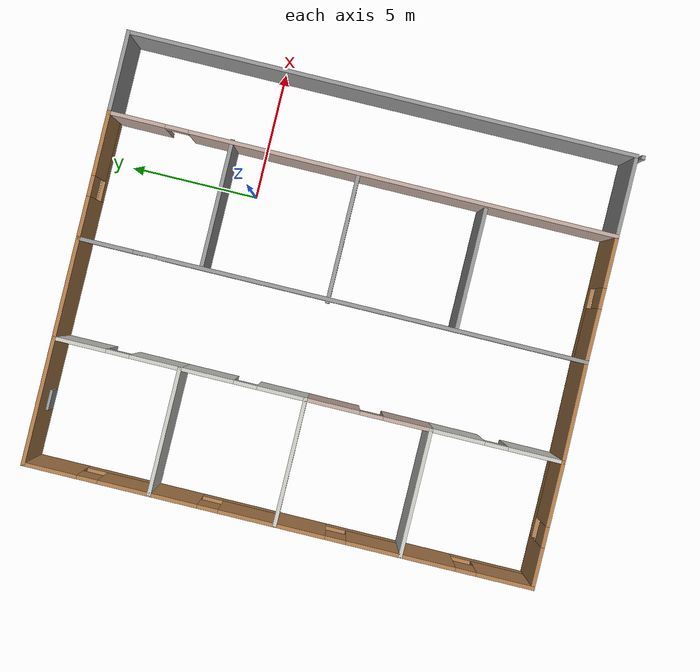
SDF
<?xml version='1.0'?>
<sdf version='1.7'>
  <model name='hospital_model_floor'>
    <pose>-3.60039 -4.00127 0 0 -0 0</pose>
    <link name='Wall_23'>
      <pose>-8.325 7.5 0 0 -0 -1.5708</pose>
      <visual name='Wall_23_Visual_0'>
        <pose>-1.43552 0 1.25 0 -0 0</pose>
        <geometry>
          <box>
            <size>2.12897 0.15 2.5</size>
          </box>
        </geometry>
        <material>
          <script>
            <uri>file://media/materials/scripts/gazebo.material</uri>
            <name>Gazebo/Wood</name>
          </script>
          <ambient>1 1 1 1</ambient>
        </material>
        <meta>
          <layer>0</layer>
        </meta>
      </visual>
      <collision name='Wall_23_Collision_0'>
        <geometry>
          <box>
            <size>2.12897 0.15 2.5</size>
          </box>
        </geometry>
        <pose>-1.43552 0 1.25 0 -0 0</pose>
      </collision>
      <visual name='Wall_23_Visual_1'>
        <pose>1.06448 0 0.25 0 -0 0</pose>
        <geometry>
          <box>
            <size>2.87103 0.15 0.5</size>
          </box>
        </geometry>
        <material>
          <script>
            <uri>file://media/materials/scripts/gazebo.material</uri>
            <name>Gazebo/Wood</name>
          </script>
          <ambient>1 1 1 1</ambient>
        </material>
        <meta>
          <layer>0</layer>
        </meta>
      </visual>
      <collision name='Wall_23_Collision_1'>
        <geometry>
          <box>
            <size>2.87103 0.15 0.5</size>
          </box>
        </geometry>
        <pose>1.06448 0 0.25 0 -0 0</pose>
      </collision>
      <visual name='Wall_23_Visual_2'>
        <pose>1.46448 0 1.5 0 -0 0</pose>
        <geometry>
          <box>
            <size>2.07103 0.15 2</size>
          </box>
        </geometry>
        <material>
          <script>
            <uri>file://media/materials/scripts/gazebo.material</uri>
            <name>Gazebo/Wood</name>
          </script>
          <ambient>1 1 1 1</ambient>
        </material>
        <meta>
          <layer>0</layer>
        </meta>
      </visual>
      <collision name='Wall_23_Collision_2'>
        <geometry>
          <box>
            <size>2.07103 0.15 2</size>
          </box>
        </geometry>
        <pose>1.46448 0 1.5 0 -0 0</pose>
      </collision>
      <visual name='Wall_23_Visual_3'>
        <pose>0.028966 0 1.9 0 -0 0</pose>
        <geometry>
          <box>
            <size>0.8 0.15 1.2</size>
          </box>
        </geometry>
        <material>
          <script>
            <uri>file://media/materials/scripts/gazebo.material</uri>
            <name>Gazebo/Wood</name>
          </script>
          <ambient>1 1 1 1</ambient>
        </material>
        <meta>
          <layer>0</layer>
        </meta>
      </visual>
      <collision name='Wall_23_Collision_3'>
        <geometry>
          <box>
            <size>0.8 0.15 1.2</size>
          </box>
        </geometry>
        <pose>0.028966 0 1.9 0 -0 0</pose>
      </collision>
    </link>
    <link name='Wall_24'>
      <collision name='Wall_24_Collision'>
        <geometry>
          <box>
            <size>5 0.15 2.5</size>
          </box>
        </geometry>
        <pose>0 0 1.25 0 -0 0</pose>
      </collision>
      <visual name='Wall_24_Visual'>
        <pose>0 0 1.25 0 -0 0</pose>
        <geometry>
          <box>
            <size>5 0.15 2.5</size>
          </box>
        </geometry>
        <material>
          <script>
            <uri>file://media/materials/scripts/gazebo.material</uri>
            <name>Gazebo/CeilingTiled</name>
          </script>
          <ambient>1 1 1 1</ambient>
        </material>
        <meta>
          <layer>0</layer>
        </meta>
      </visual>
      <pose>-5.9 5.075 0 0 -0 0</pose>
    </link>
    <link name='Wall_25'>
      <pose>-3.475 7.5 0 0 -0 1.5708</pose>
      <visual name='Wall_25_Visual_0'>
        <pose>-1.48948 0 1.25 0 -0 0</pose>
        <geometry>
          <box>
            <size>2.02103 0.15 2.5</size>
          </box>
        </geometry>
        <material>
          <script>
            <uri>file://media/materials/scripts/gazebo.material</uri>
            <name>Gazebo/CeilingTiled</name>
          </script>
          <ambient>1 1 1 1</ambient>
        </material>
        <meta>
          <layer>0</layer>
        </meta>
      </visual>
      <collision name='Wall_25_Collision_0'>
        <geometry>
          <box>
            <size>2.02103 0.15 2.5</size>
          </box>
        </geometry>
        <pose>-1.48948 0 1.25 0 -0 0</pose>
      </collision>
      <visual name='Wall_25_Visual_1'>
        <pose>1.46052 0 1.25 0 -0 0</pose>
        <geometry>
          <box>
            <size>2.07897 0.15 2.5</size>
          </box>
        </geometry>
        <material>
          <script>
            <uri>file://media/materials/scripts/gazebo.material</uri>
            <name>Gazebo/CeilingTiled</name>
          </script>
          <ambient>1 1 1 1</ambient>
        </material>
        <meta>
          <layer>0</layer>
        </meta>
      </visual>
      <collision name='Wall_25_Collision_1'>
        <geometry>
          <box>
            <size>2.07897 0.15 2.5</size>
          </box>
        </geometry>
        <pose>1.46052 0 1.25 0 -0 0</pose>
      </collision>
      <visual name='Wall_25_Visual_2'>
        <pose>-0.028966 0 2.25 0 -0 0</pose>
        <geometry>
          <box>
            <size>0.9 0.15 0.5</size>
          </box>
        </geometry>
        <material>
          <script>
            <uri>file://media/materials/scripts/gazebo.material</uri>
            <name>Gazebo/CeilingTiled</name>
          </script>
          <ambient>1 1 1 1</ambient>
        </material>
        <meta>
          <layer>0</layer>
        </meta>
      </visual>
      <collision name='Wall_25_Collision_2'>
        <geometry>
          <box>
            <size>0.9 0.15 0.5</size>
          </box>
        </geometry>
        <pose>-0.028966 0 2.25 0 -0 0</pose>
      </collision>
    </link>
    <link name='Wall_26'>
      <collision name='Wall_26_Collision'>
        <geometry>
          <box>
            <size>5 0.15 2.5</size>
          </box>
        </geometry>
        <pose>0 0 1.25 0 -0 0</pose>
      </collision>
      <visual name='Wall_26_Visual'>
        <pose>0 0 1.25 0 -0 0</pose>
        <geometry>
          <box>
            <size>5 0.15 2.5</size>
          </box>
        </geometry>
        <material>
          <script>
            <uri>file://media/materials/scripts/gazebo.material</uri>
            <name>Gazebo/Wood</name>
          </script>
          <ambient>1 1 1 1</ambient>
        </material>
        <meta>
          <layer>0</layer>
        </meta>
      </visual>
      <pose>-5.9 9.925 0 0 -0 3.14159</pose>
    </link>
    <link name='Wall_28'>
      <pose>-8.325 2.65 0 0 -0 -1.5708</pose>
      <visual name='Wall_28_Visual_0'>
        <pose>-1.53457 0 1.25 0 -0 0</pose>
        <geometry>
          <box>
            <size>1.93086 0.15 2.5</size>
          </box>
        </geometry>
        <material>
          <script>
            <uri>file://media/materials/scripts/gazebo.material</uri>
            <name>Gazebo/Wood</name>
          </script>
          <ambient>1 1 1 1</ambient>
        </material>
        <meta>
          <layer>0</layer>
        </meta>
      </visual>
      <collision name='Wall_28_Collision_0'>
        <geometry>
          <box>
            <size>1.93086 0.15 2.5</size>
          </box>
        </geometry>
        <pose>-1.53457 0 1.25 0 -0 0</pose>
      </collision>
      <visual name='Wall_28_Visual_1'>
        <pose>0.96543 0 0.25 0 -0 0</pose>
        <geometry>
          <box>
            <size>3.06914 0.15 0.5</size>
          </box>
        </geometry>
        <material>
          <script>
            <uri>file://media/materials/scripts/gazebo.material</uri>
            <name>Gazebo/Wood</name>
          </script>
          <ambient>1 1 1 1</ambient>
        </material>
        <meta>
          <layer>0</layer>
        </meta>
      </visual>
      <collision name='Wall_28_Collision_1'>
        <geometry>
          <box>
            <size>3.06914 0.15 0.5</size>
          </box>
        </geometry>
        <pose>0.96543 0 0.25 0 -0 0</pose>
      </collision>
      <visual name='Wall_28_Visual_2'>
        <pose>1.36543 0 1.5 0 -0 0</pose>
        <geometry>
          <box>
            <size>2.26914 0.15 2</size>
          </box>
        </geometry>
        <material>
          <script>
            <uri>file://media/materials/scripts/gazebo.material</uri>
            <name>Gazebo/Wood</name>
          </script>
          <ambient>1 1 1 1</ambient>
        </material>
        <meta>
          <layer>0</layer>
        </meta>
      </visual>
      <collision name='Wall_28_Collision_2'>
        <geometry>
          <box>
            <size>2.26914 0.15 2</size>
          </box>
        </geometry>
        <pose>1.36543 0 1.5 0 -0 0</pose>
      </collision>
      <visual name='Wall_28_Visual_3'>
        <pose>-0.16914 0 1.9 0 -0 0</pose>
        <geometry>
          <box>
            <size>0.8 0.15 1.2</size>
          </box>
        </geometry>
        <material>
          <script>
            <uri>file://media/materials/scripts/gazebo.material</uri>
            <name>Gazebo/Wood</name>
          </script>
          <ambient>1 1 1 1</ambient>
        </material>
        <meta>
          <layer>0</layer>
        </meta>
      </visual>
      <collision name='Wall_28_Collision_3'>
        <geometry>
          <box>
            <size>0.8 0.15 1.2</size>
          </box>
        </geometry>
        <pose>-0.16914 0 1.9 0 -0 0</pose>
      </collision>
    </link>
    <link name='Wall_29'>
      <collision name='Wall_29_Collision'>
        <geometry>
          <box>
            <size>5 0.15 2.5</size>
          </box>
        </geometry>
        <pose>0 0 1.25 0 -0 0</pose>
      </collision>
      <visual name='Wall_29_Visual'>
        <pose>0 0 1.25 0 -0 0</pose>
        <geometry>
          <box>
            <size>5 0.15 2.5</size>
          </box>
        </geometry>
        <material>
          <script>
            <uri>file://media/materials/scripts/gazebo.material</uri>
            <name>Gazebo/CeilingTiled</name>
          </script>
          <ambient>1 1 1 1</ambient>
        </material>
        <meta>
          <layer>0</layer>
        </meta>
      </visual>
      <pose>-5.9 0.224999 0 0 -0 0</pose>
    </link>
    <link name='Wall_30'>
      <pose>-3.475 2.65 0 0 -0 1.5708</pose>
      <visual name='Wall_30_Visual_0'>
        <pose>-1.52725 0 1.25 0 -0 0</pose>
        <geometry>
          <box>
            <size>1.9455 0.15 2.5</size>
          </box>
        </geometry>
        <material>
          <script>
            <uri>file://media/materials/scripts/gazebo.material</uri>
            <name>Gazebo/CeilingTiled</name>
          </script>
          <ambient>1 1 1 1</ambient>
        </material>
        <meta>
          <layer>0</layer>
        </meta>
      </visual>
      <collision name='Wall_30_Collision_0'>
        <geometry>
          <box>
            <size>1.9455 0.15 2.5</size>
          </box>
        </geometry>
        <pose>-1.52725 0 1.25 0 -0 0</pose>
      </collision>
      <visual name='Wall_30_Visual_1'>
        <pose>1.42275 0 1.25 0 -0 0</pose>
        <geometry>
          <box>
            <size>2.1545 0.15 2.5</size>
          </box>
        </geometry>
        <material>
          <script>
            <uri>file://media/materials/scripts/gazebo.material</uri>
            <name>Gazebo/CeilingTiled</name>
          </script>
          <ambient>1 1 1 1</ambient>
        </material>
        <meta>
          <layer>0</layer>
        </meta>
      </visual>
      <collision name='Wall_30_Collision_1'>
        <geometry>
          <box>
            <size>2.1545 0.15 2.5</size>
          </box>
        </geometry>
        <pose>1.42275 0 1.25 0 -0 0</pose>
      </collision>
      <visual name='Wall_30_Visual_2'>
        <pose>-0.104501 0 2.25 0 -0 0</pose>
        <geometry>
          <box>
            <size>0.9 0.15 0.5</size>
          </box>
        </geometry>
        <material>
          <script>
            <uri>file://media/materials/scripts/gazebo.material</uri>
            <name>Gazebo/CeilingTiled</name>
          </script>
          <ambient>1 1 1 1</ambient>
        </material>
        <meta>
          <layer>0</layer>
        </meta>
      </visual>
      <collision name='Wall_30_Collision_2'>
        <geometry>
          <box>
            <size>0.9 0.15 0.5</size>
          </box>
        </geometry>
        <pose>-0.104501 0 2.25 0 -0 0</pose>
      </collision>
    </link>
    <link name='Wall_32'>
      <pose>-8.325 -2.2 0 0 -0 -1.5708</pose>
      <visual name='Wall_32_Visual_0'>
        <pose>-1.4968 0 1.25 0 -0 0</pose>
        <geometry>
          <box>
            <size>2.00639 0.15 2.5</size>
          </box>
        </geometry>
        <material>
          <script>
            <uri>file://media/materials/scripts/gazebo.material</uri>
            <name>Gazebo/Wood</name>
          </script>
          <ambient>1 1 1 1</ambient>
        </material>
        <meta>
          <layer>0</layer>
        </meta>
      </visual>
      <collision name='Wall_32_Collision_0'>
        <geometry>
          <box>
            <size>2.00639 0.15 2.5</size>
          </box>
        </geometry>
        <pose>-1.4968 0 1.25 0 -0 0</pose>
      </collision>
      <visual name='Wall_32_Visual_1'>
        <pose>1.0032 0 0.25 0 -0 0</pose>
        <geometry>
          <box>
            <size>2.99361 0.15 0.5</size>
          </box>
        </geometry>
        <material>
          <script>
            <uri>file://media/materials/scripts/gazebo.material</uri>
            <name>Gazebo/Wood</name>
          </script>
          <ambient>1 1 1 1</ambient>
        </material>
        <meta>
          <layer>0</layer>
        </meta>
      </visual>
      <collision name='Wall_32_Collision_1'>
        <geometry>
          <box>
            <size>2.99361 0.15 0.5</size>
          </box>
        </geometry>
        <pose>1.0032 0 0.25 0 -0 0</pose>
      </collision>
      <visual name='Wall_32_Visual_2'>
        <pose>1.4032 0 1.5 0 -0 0</pose>
        <geometry>
          <box>
            <size>2.1936 0.15 2</size>
          </box>
        </geometry>
        <material>
          <script>
            <uri>file://media/materials/scripts/gazebo.material</uri>
            <name>Gazebo/Wood</name>
          </script>
          <ambient>1 1 1 1</ambient>
        </material>
        <meta>
          <layer>0</layer>
        </meta>
      </visual>
      <collision name='Wall_32_Collision_2'>
        <geometry>
          <box>
            <size>2.1936 0.15 2</size>
          </box>
        </geometry>
        <pose>1.4032 0 1.5 0 -0 0</pose>
      </collision>
      <visual name='Wall_32_Visual_3'>
        <pose>-0.093605 0 1.9 0 -0 0</pose>
        <geometry>
          <box>
            <size>0.8 0.15 1.2</size>
          </box>
        </geometry>
        <material>
          <script>
            <uri>file://media/materials/scripts/gazebo.material</uri>
            <name>Gazebo/Wood</name>
          </script>
          <ambient>1 1 1 1</ambient>
        </material>
        <meta>
          <layer>0</layer>
        </meta>
      </visual>
      <collision name='Wall_32_Collision_3'>
        <geometry>
          <box>
            <size>0.8 0.15 1.2</size>
          </box>
        </geometry>
        <pose>-0.093605 0 1.9 0 -0 0</pose>
      </collision>
    </link>
    <link name='Wall_33'>
      <collision name='Wall_33_Collision'>
        <geometry>
          <box>
            <size>5 0.15 2.5</size>
          </box>
        </geometry>
        <pose>0 0 1.25 0 -0 0</pose>
      </collision>
      <visual name='Wall_33_Visual'>
        <pose>0 0 1.25 0 -0 0</pose>
        <geometry>
          <box>
            <size>5 0.15 2.5</size>
          </box>
        </geometry>
        <material>
          <script>
            <uri>file://media/materials/scripts/gazebo.material</uri>
            <name>Gazebo/CeilingTiled</name>
          </script>
          <ambient>1 1 1 1</ambient>
        </material>
        <meta>
          <layer>0</layer>
        </meta>
      </visual>
      <pose>-5.9 -4.625 0 0 -0 0</pose>
    </link>
    <link name='Wall_34'>
      <pose>-3.475 -2.2 0 0 -0 1.5708</pose>
      <visual name='Wall_34_Visual_0'>
        <pose>-1.53765 0 1.25 0 -0 0</pose>
        <geometry>
          <box>
            <size>1.92469 0.15 2.5</size>
          </box>
        </geometry>
        <material>
          <script>
            <uri>file://media/materials/scripts/gazebo.material</uri>
            <name>Gazebo/Grey</name>
          </script>
          <ambient>0.760784 0.662745 0.627451 1</ambient>
        </material>
        <meta>
          <layer>0</layer>
        </meta>
      </visual>
      <collision name='Wall_34_Collision_0'>
        <geometry>
          <box>
            <size>1.92469 0.15 2.5</size>
          </box>
        </geometry>
        <pose>-1.53765 0 1.25 0 -0 0</pose>
      </collision>
      <visual name='Wall_34_Visual_1'>
        <pose>1.41235 0 1.25 0 -0 0</pose>
        <geometry>
          <box>
            <size>2.17531 0.15 2.5</size>
          </box>
        </geometry>
        <material>
          <script>
            <uri>file://media/materials/scripts/gazebo.material</uri>
            <name>Gazebo/Grey</name>
          </script>
          <ambient>0.760784 0.662745 0.627451 1</ambient>
        </material>
        <meta>
          <layer>0</layer>
        </meta>
      </visual>
      <collision name='Wall_34_Collision_1'>
        <geometry>
          <box>
            <size>2.17531 0.15 2.5</size>
          </box>
        </geometry>
        <pose>1.41235 0 1.25 0 -0 0</pose>
      </collision>
      <visual name='Wall_34_Visual_2'>
        <pose>-0.125308 0 2.25 0 -0 0</pose>
        <geometry>
          <box>
            <size>0.9 0.15 0.5</size>
          </box>
        </geometry>
        <material>
          <script>
            <uri>file://media/materials/scripts/gazebo.material</uri>
            <name>Gazebo/Grey</name>
          </script>
          <ambient>0.760784 0.662745 0.627451 1</ambient>
        </material>
        <meta>
          <layer>0</layer>
        </meta>
      </visual>
      <collision name='Wall_34_Collision_2'>
        <geometry>
          <box>
            <size>0.9 0.15 0.5</size>
          </box>
        </geometry>
        <pose>-0.125308 0 2.25 0 -0 0</pose>
      </collision>
    </link>
    <link name='Wall_37'>
      <pose>-8.325 -7.175 0 0 -0 -1.5708</pose>
      <visual name='Wall_37_Visual_0'>
        <pose>-1.52931 0 1.25 0 -0 0</pose>
        <geometry>
          <box>
            <size>2.19139 0.15 2.5</size>
          </box>
        </geometry>
        <material>
          <script>
            <uri>file://media/materials/scripts/gazebo.material</uri>
            <name>Gazebo/Wood</name>
          </script>
          <ambient>1 1 1 1</ambient>
        </material>
        <meta>
          <layer>0</layer>
        </meta>
      </visual>
      <collision name='Wall_37_Collision_0'>
        <geometry>
          <box>
            <size>2.19139 0.15 2.5</size>
          </box>
        </geometry>
        <pose>-1.52931 0 1.25 0 -0 0</pose>
      </collision>
      <visual name='Wall_37_Visual_1'>
        <pose>1.09569 0 0.25 0 -0 0</pose>
        <geometry>
          <box>
            <size>3.05861 0.15 0.5</size>
          </box>
        </geometry>
        <material>
          <script>
            <uri>file://media/materials/scripts/gazebo.material</uri>
            <name>Gazebo/Wood</name>
          </script>
          <ambient>1 1 1 1</ambient>
        </material>
        <meta>
          <layer>0</layer>
        </meta>
      </visual>
      <collision name='Wall_37_Collision_1'>
        <geometry>
          <box>
            <size>3.05861 0.15 0.5</size>
          </box>
        </geometry>
        <pose>1.09569 0 0.25 0 -0 0</pose>
      </collision>
      <visual name='Wall_37_Visual_2'>
        <pose>1.49569 0 1.5 0 -0 0</pose>
        <geometry>
          <box>
            <size>2.25861 0.15 2</size>
          </box>
        </geometry>
        <material>
          <script>
            <uri>file://media/materials/scripts/gazebo.material</uri>
            <name>Gazebo/Wood</name>
          </script>
          <ambient>1 1 1 1</ambient>
        </material>
        <meta>
          <layer>0</layer>
        </meta>
      </visual>
      <collision name='Wall_37_Collision_2'>
        <geometry>
          <box>
            <size>2.25861 0.15 2</size>
          </box>
        </geometry>
        <pose>1.49569 0 1.5 0 -0 0</pose>
      </collision>
      <visual name='Wall_37_Visual_3'>
        <pose>-0.033613 0 1.9 0 -0 0</pose>
        <geometry>
          <box>
            <size>0.8 0.15 1.2</size>
          </box>
        </geometry>
        <material>
          <script>
            <uri>file://media/materials/scripts/gazebo.material</uri>
            <name>Gazebo/Wood</name>
          </script>
          <ambient>1 1 1 1</ambient>
        </material>
        <meta>
          <layer>0</layer>
        </meta>
      </visual>
      <collision name='Wall_37_Collision_3'>
        <geometry>
          <box>
            <size>0.8 0.15 1.2</size>
          </box>
        </geometry>
        <pose>-0.033613 0 1.9 0 -0 0</pose>
      </collision>
    </link>
    <link name='Wall_38'>
      <pose>-5.9 -9.725 0 0 -0 0</pose>
      <visual name='Wall_38_Visual_0'>
        <pose>-1.68114 0 1.25 0 -0 0</pose>
        <geometry>
          <box>
            <size>1.63772 0.15 2.5</size>
          </box>
        </geometry>
        <material>
          <script>
            <uri>file://media/materials/scripts/gazebo.material</uri>
            <name>Gazebo/Wood</name>
          </script>
          <ambient>1 1 1 1</ambient>
        </material>
        <meta>
          <layer>0</layer>
        </meta>
      </visual>
      <collision name='Wall_38_Collision_0'>
        <geometry>
          <box>
            <size>1.63772 0.15 2.5</size>
          </box>
        </geometry>
        <pose>-1.68114 0 1.25 0 -0 0</pose>
      </collision>
      <visual name='Wall_38_Visual_1'>
        <pose>0.818861 0 0.25 0 -0 0</pose>
        <geometry>
          <box>
            <size>3.36228 0.15 0.5</size>
          </box>
        </geometry>
        <material>
          <script>
            <uri>file://media/materials/scripts/gazebo.material</uri>
            <name>Gazebo/Wood</name>
          </script>
          <ambient>1 1 1 1</ambient>
        </material>
        <meta>
          <layer>0</layer>
        </meta>
      </visual>
      <collision name='Wall_38_Collision_1'>
        <geometry>
          <box>
            <size>3.36228 0.15 0.5</size>
          </box>
        </geometry>
        <pose>0.818861 0 0.25 0 -0 0</pose>
      </collision>
      <visual name='Wall_38_Visual_2'>
        <pose>1.21886 0 1.5 0 -0 0</pose>
        <geometry>
          <box>
            <size>2.56228 0.15 2</size>
          </box>
        </geometry>
        <material>
          <script>
            <uri>file://media/materials/scripts/gazebo.material</uri>
            <name>Gazebo/Wood</name>
          </script>
          <ambient>1 1 1 1</ambient>
        </material>
        <meta>
          <layer>0</layer>
        </meta>
      </visual>
      <collision name='Wall_38_Collision_2'>
        <geometry>
          <box>
            <size>2.56228 0.15 2</size>
          </box>
        </geometry>
        <pose>1.21886 0 1.5 0 -0 0</pose>
      </collision>
      <visual name='Wall_38_Visual_3'>
        <pose>-0.462277 0 1.9 0 -0 0</pose>
        <geometry>
          <box>
            <size>0.8 0.15 1.2</size>
          </box>
        </geometry>
        <material>
          <script>
            <uri>file://media/materials/scripts/gazebo.material</uri>
            <name>Gazebo/Wood</name>
          </script>
          <ambient>1 1 1 1</ambient>
        </material>
        <meta>
          <layer>0</layer>
        </meta>
      </visual>
      <collision name='Wall_38_Collision_3'>
        <geometry>
          <box>
            <size>0.8 0.15 1.2</size>
          </box>
        </geometry>
        <pose>-0.462277 0 1.9 0 -0 0</pose>
      </collision>
    </link>
    <link name='Wall_39'>
      <pose>-3.475 -7.175 0 0 -0 1.5708</pose>
      <visual name='Wall_39_Visual_0'>
        <pose>-1.52069 0 1.25 0 -0 0</pose>
        <geometry>
          <box>
            <size>2.20861 0.15 2.5</size>
          </box>
        </geometry>
        <material>
          <script>
            <uri>file://media/materials/scripts/gazebo.material</uri>
            <name>Gazebo/CeilingTiled</name>
          </script>
          <ambient>0.760784 0.662745 0.627451 1</ambient>
        </material>
        <meta>
          <layer>0</layer>
        </meta>
      </visual>
      <collision name='Wall_39_Collision_0'>
        <geometry>
          <box>
            <size>2.20861 0.15 2.5</size>
          </box>
        </geometry>
        <pose>-1.52069 0 1.25 0 -0 0</pose>
      </collision>
      <visual name='Wall_39_Visual_1'>
        <pose>1.55431 0 1.25 0 -0 0</pose>
        <geometry>
          <box>
            <size>2.14139 0.15 2.5</size>
          </box>
        </geometry>
        <material>
          <script>
            <uri>file://media/materials/scripts/gazebo.material</uri>
            <name>Gazebo/CeilingTiled</name>
          </script>
          <ambient>0.760784 0.662745 0.627451 1</ambient>
        </material>
        <meta>
          <layer>0</layer>
        </meta>
      </visual>
      <collision name='Wall_39_Collision_1'>
        <geometry>
          <box>
            <size>2.14139 0.15 2.5</size>
          </box>
        </geometry>
        <pose>1.55431 0 1.25 0 -0 0</pose>
      </collision>
      <visual name='Wall_39_Visual_2'>
        <pose>0.033613 0 2.25 0 -0 0</pose>
        <geometry>
          <box>
            <size>0.9 0.15 0.5</size>
          </box>
        </geometry>
        <material>
          <script>
            <uri>file://media/materials/scripts/gazebo.material</uri>
            <name>Gazebo/CeilingTiled</name>
          </script>
          <ambient>0.760784 0.662745 0.627451 1</ambient>
        </material>
        <meta>
          <layer>0</layer>
        </meta>
      </visual>
      <collision name='Wall_39_Collision_2'>
        <geometry>
          <box>
            <size>0.9 0.15 0.5</size>
          </box>
        </geometry>
        <pose>0.033613 0 2.25 0 -0 0</pose>
      </collision>
    </link>
    <link name='Wall_43'>
      <collision name='Wall_43_Collision'>
        <geometry>
          <box>
            <size>4 0.15 2.5</size>
          </box>
        </geometry>
        <pose>0 0 1.25 0 -0 0</pose>
      </collision>
      <visual name='Wall_43_Visual'>
        <pose>0 0 1.25 0 -0 0</pose>
        <geometry>
          <box>
            <size>4 0.15 2.5</size>
          </box>
        </geometry>
        <material>
          <script>
            <uri>file://media/materials/scripts/gazebo.material</uri>
            <name>Gazebo/Wood</name>
          </script>
          <ambient>1 1 1 1</ambient>
        </material>
        <meta>
          <layer>0</layer>
        </meta>
      </visual>
      <pose>-1.55 9.925 0 0 -0 0</pose>
    </link>
    <link name='Wall_44'>
      <pose>0.375 0.124999 0 0 -0 -1.5708</pose>
      <visual name='Wall_44_Visual_0'>
        <pose>-8.78079 0 1.25 0 -0 0</pose>
        <geometry>
          <box>
            <size>2.18842 0.15 2.5</size>
          </box>
        </geometry>
        <material>
          <script>
            <uri>file://media/materials/scripts/gazebo.material</uri>
            <name>Gazebo/Grey</name>
          </script>
          <ambient>1 1 1 1</ambient>
        </material>
        <meta>
          <layer>0</layer>
        </meta>
      </visual>
      <collision name='Wall_44_Collision_0'>
        <geometry>
          <box>
            <size>2.18842 0.15 2.5</size>
          </box>
        </geometry>
        <pose>-8.78079 0 1.25 0 -0 0</pose>
      </collision>
      <visual name='Wall_44_Visual_1'>
        <pose>1.54421 0 1.25 0 -0 0</pose>
        <geometry>
          <box>
            <size>16.6616 0.15 2.5</size>
          </box>
        </geometry>
        <material>
          <script>
            <uri>file://media/materials/scripts/gazebo.material</uri>
            <name>Gazebo/Grey</name>
          </script>
          <ambient>1 1 1 1</ambient>
        </material>
        <meta>
          <layer>0</layer>
        </meta>
      </visual>
      <collision name='Wall_44_Collision_1'>
        <geometry>
          <box>
            <size>16.6616 0.15 2.5</size>
          </box>
        </geometry>
        <pose>1.54421 0 1.25 0 -0 0</pose>
      </collision>
      <visual name='Wall_44_Visual_2'>
        <pose>-7.23658 0 2.25 0 -0 0</pose>
        <geometry>
          <box>
            <size>0.9 0.15 0.5</size>
          </box>
        </geometry>
        <material>
          <script>
            <uri>file://media/materials/scripts/gazebo.material</uri>
            <name>Gazebo/Grey</name>
          </script>
          <ambient>1 1 1 1</ambient>
        </material>
        <meta>
          <layer>0</layer>
        </meta>
      </visual>
      <collision name='Wall_44_Collision_2'>
        <geometry>
          <box>
            <size>0.9 0.15 0.5</size>
          </box>
        </geometry>
        <pose>-7.23658 0 2.25 0 -0 0</pose>
      </collision>
    </link>
    <link name='Wall_45'>
      <collision name='Wall_45_Collision'>
        <geometry>
          <box>
            <size>4.00033 0.15 2.5</size>
          </box>
        </geometry>
        <pose>0 0 1.25 0 -0 0</pose>
      </collision>
      <visual name='Wall_45_Visual'>
        <pose>0 0 1.25 0 -0 0</pose>
        <geometry>
          <box>
            <size>4.00033 0.15 2.5</size>
          </box>
        </geometry>
        <material>
          <script>
            <uri>file://media/materials/scripts/gazebo.material</uri>
            <name>Gazebo/Wood</name>
          </script>
          <ambient>1 1 1 1</ambient>
        </material>
        <meta>
          <layer>0</layer>
        </meta>
      </visual>
      <pose>-1.55 -9.7 0 0 -0 -3.12861</pose>
    </link>
    <link name='Wall_51'>
      <pose>2.8 9.925 0 0 -0 0</pose>
      <visual name='Wall_51_Visual_0'>
        <pose>-1.65289 0 1.25 0 -0 0</pose>
        <geometry>
          <box>
            <size>1.69423 0.15 2.5</size>
          </box>
        </geometry>
        <material>
          <script>
            <uri>file://media/materials/scripts/gazebo.material</uri>
            <name>Gazebo/Wood</name>
          </script>
          <ambient>1 1 1 1</ambient>
        </material>
        <meta>
          <layer>0</layer>
        </meta>
      </visual>
      <collision name='Wall_51_Collision_0'>
        <geometry>
          <box>
            <size>1.69423 0.15 2.5</size>
          </box>
        </geometry>
        <pose>-1.65289 0 1.25 0 -0 0</pose>
      </collision>
      <visual name='Wall_51_Visual_1'>
        <pose>0.847114 0 0.25 0 -0 0</pose>
        <geometry>
          <box>
            <size>3.30577 0.15 0.5</size>
          </box>
        </geometry>
        <material>
          <script>
            <uri>file://media/materials/scripts/gazebo.material</uri>
            <name>Gazebo/Wood</name>
          </script>
          <ambient>1 1 1 1</ambient>
        </material>
        <meta>
          <layer>0</layer>
        </meta>
      </visual>
      <collision name='Wall_51_Collision_1'>
        <geometry>
          <box>
            <size>3.30577 0.15 0.5</size>
          </box>
        </geometry>
        <pose>0.847114 0 0.25 0 -0 0</pose>
      </collision>
      <visual name='Wall_51_Visual_2'>
        <pose>1.24711 0 1.5 0 -0 0</pose>
        <geometry>
          <box>
            <size>2.50577 0.15 2</size>
          </box>
        </geometry>
        <material>
          <script>
            <uri>file://media/materials/scripts/gazebo.material</uri>
            <name>Gazebo/Wood</name>
          </script>
          <ambient>1 1 1 1</ambient>
        </material>
        <meta>
          <layer>0</layer>
        </meta>
      </visual>
      <collision name='Wall_51_Collision_2'>
        <geometry>
          <box>
            <size>2.50577 0.15 2</size>
          </box>
        </geometry>
        <pose>1.24711 0 1.5 0 -0 0</pose>
      </collision>
      <visual name='Wall_51_Visual_3'>
        <pose>-0.405771 0 1.9 0 -0 0</pose>
        <geometry>
          <box>
            <size>0.8 0.15 1.2</size>
          </box>
        </geometry>
        <material>
          <script>
            <uri>file://media/materials/scripts/gazebo.material</uri>
            <name>Gazebo/Wood</name>
          </script>
          <ambient>1 1 1 1</ambient>
        </material>
        <meta>
          <layer>0</layer>
        </meta>
      </visual>
      <collision name='Wall_51_Collision_3'>
        <geometry>
          <box>
            <size>0.8 0.15 1.2</size>
          </box>
        </geometry>
        <pose>-0.405771 0 1.9 0 -0 0</pose>
      </collision>
    </link>
    <link name='Wall_52'>
      <pose>5.225 0.124999 0 0 -0 -1.5708</pose>
      <visual name='Wall_52_Visual_0'>
        <pose>-8.75343 0 1.25 0 -0 0</pose>
        <geometry>
          <box>
            <size>2.24315 0.15 2.5</size>
          </box>
        </geometry>
        <material>
          <script>
            <uri>file://media/materials/scripts/gazebo.material</uri>
            <name>Gazebo/Grey</name>
          </script>
          <ambient>0.760784 0.662745 0.627451 1</ambient>
        </material>
        <meta>
          <layer>0</layer>
        </meta>
      </visual>
      <collision name='Wall_52_Collision_0'>
        <geometry>
          <box>
            <size>2.24315 0.15 2.5</size>
          </box>
        </geometry>
        <pose>-8.75343 0 1.25 0 -0 0</pose>
      </collision>
      <visual name='Wall_52_Visual_1'>
        <pose>1.57157 0 1.25 0 -0 0</pose>
        <geometry>
          <box>
            <size>16.6069 0.15 2.5</size>
          </box>
        </geometry>
        <material>
          <script>
            <uri>file://media/materials/scripts/gazebo.material</uri>
            <name>Gazebo/Grey</name>
          </script>
          <ambient>0.760784 0.662745 0.627451 1</ambient>
        </material>
        <meta>
          <layer>0</layer>
        </meta>
      </visual>
      <collision name='Wall_52_Collision_1'>
        <geometry>
          <box>
            <size>16.6069 0.15 2.5</size>
          </box>
        </geometry>
        <pose>1.57157 0 1.25 0 -0 0</pose>
      </collision>
      <visual name='Wall_52_Visual_2'>
        <pose>-7.18185 0 2.25 0 -0 0</pose>
        <geometry>
          <box>
            <size>0.9 0.15 0.5</size>
          </box>
        </geometry>
        <material>
          <script>
            <uri>file://media/materials/scripts/gazebo.material</uri>
            <name>Gazebo/Grey</name>
          </script>
          <ambient>0.760784 0.662745 0.627451 1</ambient>
        </material>
        <meta>
          <layer>0</layer>
        </meta>
      </visual>
      <collision name='Wall_52_Collision_2'>
        <geometry>
          <box>
            <size>0.9 0.15 0.5</size>
          </box>
        </geometry>
        <pose>-7.18185 0 2.25 0 -0 0</pose>
      </collision>
    </link>
    <link name='Wall_53'>
      <pose>2.8 -9.675 0 0 -0 3.14159</pose>
      <visual name='Wall_53_Visual_0'>
        <pose>-1.46603 0 1.25 0 -0 0</pose>
        <geometry>
          <box>
            <size>2.06795 0.15 2.5</size>
          </box>
        </geometry>
        <material>
          <script>
            <uri>file://media/materials/scripts/gazebo.material</uri>
            <name>Gazebo/Wood</name>
          </script>
          <ambient>1 1 1 1</ambient>
        </material>
        <meta>
          <layer>0</layer>
        </meta>
      </visual>
      <collision name='Wall_53_Collision_0'>
        <geometry>
          <box>
            <size>2.06795 0.15 2.5</size>
          </box>
        </geometry>
        <pose>-1.46603 0 1.25 0 -0 0</pose>
      </collision>
      <visual name='Wall_53_Visual_1'>
        <pose>1.03397 0 0.25 0 -0 0</pose>
        <geometry>
          <box>
            <size>2.93205 0.15 0.5</size>
          </box>
        </geometry>
        <material>
          <script>
            <uri>file://media/materials/scripts/gazebo.material</uri>
            <name>Gazebo/Wood</name>
          </script>
          <ambient>1 1 1 1</ambient>
        </material>
        <meta>
          <layer>0</layer>
        </meta>
      </visual>
      <collision name='Wall_53_Collision_1'>
        <geometry>
          <box>
            <size>2.93205 0.15 0.5</size>
          </box>
        </geometry>
        <pose>1.03397 0 0.25 0 -0 0</pose>
      </collision>
      <visual name='Wall_53_Visual_2'>
        <pose>1.43397 0 1.5 0 -0 0</pose>
        <geometry>
          <box>
            <size>2.13205 0.15 2</size>
          </box>
        </geometry>
        <material>
          <script>
            <uri>file://media/materials/scripts/gazebo.material</uri>
            <name>Gazebo/Wood</name>
          </script>
          <ambient>1 1 1 1</ambient>
        </material>
        <meta>
          <layer>0</layer>
        </meta>
      </visual>
      <collision name='Wall_53_Collision_2'>
        <geometry>
          <box>
            <size>2.13205 0.15 2</size>
          </box>
        </geometry>
        <pose>1.43397 0 1.5 0 -0 0</pose>
      </collision>
      <visual name='Wall_53_Visual_3'>
        <pose>-0.032054 0 1.9 0 -0 0</pose>
        <geometry>
          <box>
            <size>0.8 0.15 1.2</size>
          </box>
        </geometry>
        <material>
          <script>
            <uri>file://media/materials/scripts/gazebo.material</uri>
            <name>Gazebo/Wood</name>
          </script>
          <ambient>1 1 1 1</ambient>
        </material>
        <meta>
          <layer>0</layer>
        </meta>
      </visual>
      <collision name='Wall_53_Collision_3'>
        <geometry>
          <box>
            <size>0.8 0.15 1.2</size>
          </box>
        </geometry>
        <pose>-0.032054 0 1.9 0 -0 0</pose>
      </collision>
    </link>
    <link name='Wall_55'>
      <collision name='Wall_55_Collision'>
        <geometry>
          <box>
            <size>5 0.15 2.5</size>
          </box>
        </geometry>
        <pose>0 0 1.25 0 -0 0</pose>
      </collision>
      <visual name='Wall_55_Visual'>
        <pose>0 0 1.25 0 -0 0</pose>
        <geometry>
          <box>
            <size>5 0.15 2.5</size>
          </box>
        </geometry>
        <material>
          <script>
            <uri>file://media/materials/scripts/gazebo.material</uri>
            <name>Gazebo/Grey</name>
          </script>
          <ambient>1 1 1 1</ambient>
        </material>
        <meta>
          <layer>0</layer>
        </meta>
      </visual>
      <pose>2.83853 5.18195 0 0 -0 0</pose>
    </link>
    <link name='Wall_59'>
      <collision name='Wall_59_Collision'>
        <geometry>
          <box>
            <size>5 0.15 2.5</size>
          </box>
        </geometry>
        <pose>0 0 1.25 0 -0 0</pose>
      </collision>
      <visual name='Wall_59_Visual'>
        <pose>0 0 1.25 0 -0 0</pose>
        <geometry>
          <box>
            <size>5 0.15 2.5</size>
          </box>
        </geometry>
        <material>
          <script>
            <uri>file://media/materials/scripts/gazebo.material</uri>
            <name>Gazebo/Grey</name>
          </script>
          <ambient>1 1 1 1</ambient>
        </material>
        <meta>
          <layer>0</layer>
        </meta>
      </visual>
      <pose>2.72416 0.288261 0 0 -0 0</pose>
    </link>
    <link name='Wall_61'>
      <collision name='Wall_61_Collision'>
        <geometry>
          <box>
            <size>4.75 0.15 2.5</size>
          </box>
        </geometry>
        <pose>0 0 1.25 0 -0 0</pose>
      </collision>
      <visual name='Wall_61_Visual'>
        <pose>0 0 1.25 0 -0 0</pose>
        <geometry>
          <box>
            <size>4.75 0.15 2.5</size>
          </box>
        </geometry>
        <material>
          <script>
            <uri>file://media/materials/scripts/gazebo.material</uri>
            <name>Gazebo/Grey</name>
          </script>
          <ambient>1 1 1 1</ambient>
        </material>
        <meta>
          <layer>0</layer>
        </meta>
      </visual>
      <pose>2.72432 -4.65572 0 0 -0 0</pose>
    </link>
    <link name='Wall_63'>
      <collision name='Wall_63_Collision'>
        <geometry>
          <box>
            <size>3.25 0.15 2.5</size>
          </box>
        </geometry>
        <pose>0 0 1.25 0 -0 0</pose>
      </collision>
      <visual name='Wall_63_Visual'>
        <pose>0 0 1.25 0 -0 0</pose>
        <geometry>
          <box>
            <size>3.25 0.15 2.5</size>
          </box>
        </geometry>
        <material>
          <script>
            <uri>file://media/materials/scripts/gazebo.material</uri>
            <name>Gazebo/Grey</name>
          </script>
          <ambient>1 1 1 1</ambient>
        </material>
        <meta>
          <layer>0</layer>
        </meta>
      </visual>
      <pose>6.775 9.925 0 0 -0 0</pose>
    </link>
    <link name='Wall_71'>
      <collision name='Wall_71_Collision'>
        <geometry>
          <box>
            <size>0.15 0.15 2.5</size>
          </box>
        </geometry>
        <pose>0 0 1.25 0 -0 0</pose>
      </collision>
      <visual name='Wall_71_Visual'>
        <pose>0 0 1.25 0 -0 0</pose>
        <geometry>
          <box>
            <size>0.15 0.15 2.5</size>
          </box>
        </geometry>
        <material>
          <script>
            <uri>file://media/materials/scripts/gazebo.material</uri>
            <name>Gazebo/Grey</name>
          </script>
          <ambient>1 1 1 1</ambient>
        </material>
        <meta>
          <layer>0</layer>
        </meta>
      </visual>
      <pose>8.325 -9.925 0 0 -0 0</pose>
    </link>
    <link name='Wall_74'>
      <collision name='Wall_74_Collision'>
        <geometry>
          <box>
            <size>19.75 0.15 2.5</size>
          </box>
        </geometry>
        <pose>0 0 1.25 0 -0 0</pose>
      </collision>
      <visual name='Wall_74_Visual'>
        <pose>0 0 1.25 0 -0 0</pose>
        <geometry>
          <box>
            <size>19.75 0.15 2.5</size>
          </box>
        </geometry>
        <material>
          <script>
            <uri>file://media/materials/scripts/gazebo.material</uri>
            <name>Gazebo/Grey</name>
          </script>
          <ambient>1 1 1 1</ambient>
        </material>
        <meta>
          <layer>0</layer>
        </meta>
      </visual>
      <pose>8.325 0.124999 0 0 -0 -1.5708</pose>
    </link>
    <link name='Wall_75'>
      <collision name='Wall_75_Collision'>
        <geometry>
          <box>
            <size>3.25 0.15 2.5</size>
          </box>
        </geometry>
        <pose>0 0 1.25 0 -0 0</pose>
      </collision>
      <visual name='Wall_75_Visual'>
        <pose>0 0 1.25 0 -0 0</pose>
        <geometry>
          <box>
            <size>3.25 0.15 2.5</size>
          </box>
        </geometry>
        <material>
          <script>
            <uri>file://media/materials/scripts/gazebo.material</uri>
            <name>Gazebo/Grey</name>
          </script>
          <ambient>1 1 1 1</ambient>
        </material>
        <meta>
          <layer>0</layer>
        </meta>
      </visual>
      <pose>6.775 -9.675 0 0 -0 3.14159</pose>
    </link>
    <link name='Window_1'>
      <collision name='Window_1_Collision'>
        <geometry>
          <box>
            <size>0.8 0.17 0.8</size>
          </box>
        </geometry>
        <pose>0 0 0.4 0 -0 0</pose>
      </collision>
      <visual name='Window_1_Visual'>
        <pose>0 0 0.4 0 -0 0</pose>
        <geometry>
          <box>
            <size>0.8 0.17 0.8</size>
          </box>
        </geometry>
        <material>
          <script>
            <uri>file://media/materials/scripts/gazebo.material</uri>
            <name>Gazebo/Grey</name>
          </script>
        </material>
      </visual>
      <pose>-5.92445 9.82434 0.5 0 -0 0</pose>
    </link>
    <static>1</static>
  </model>
</sdf>
